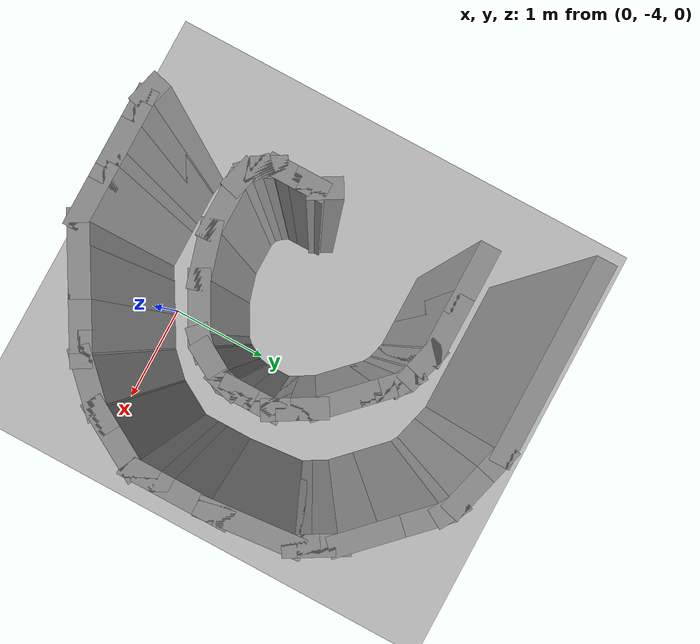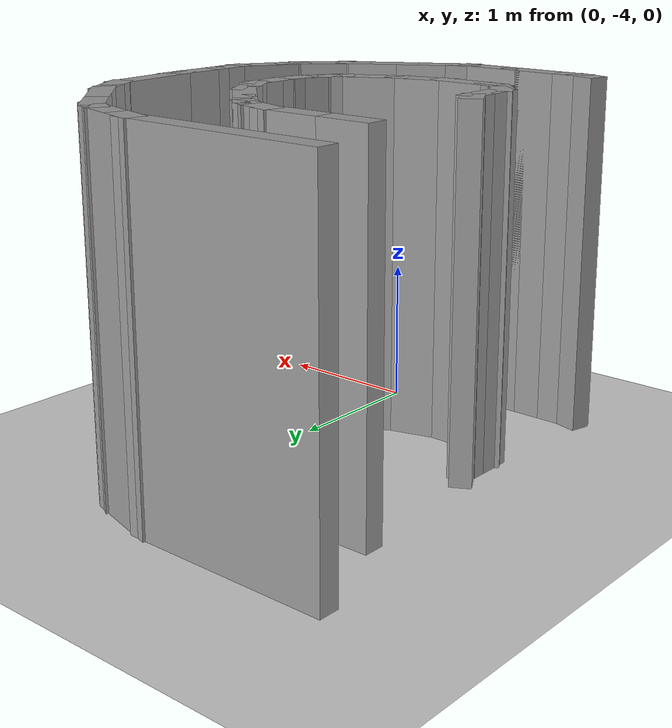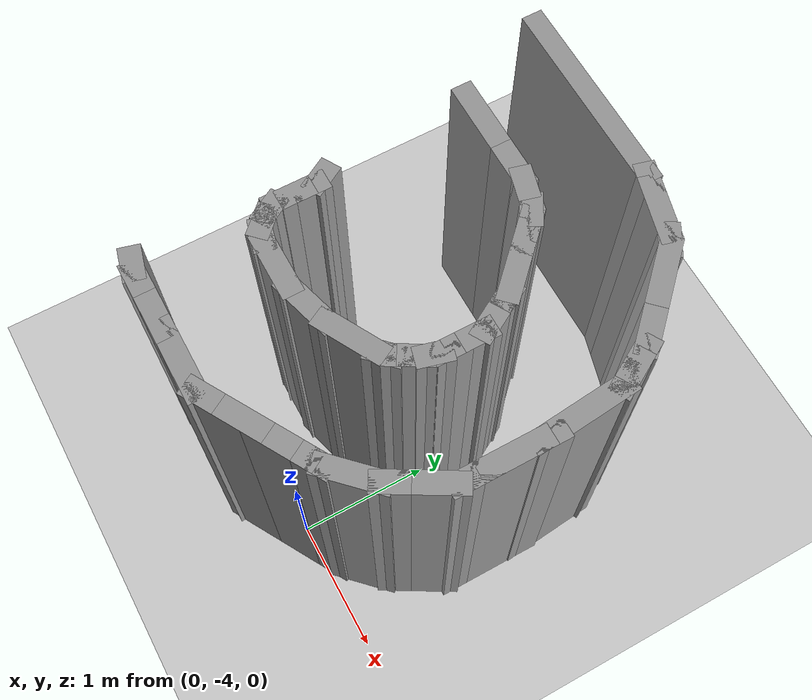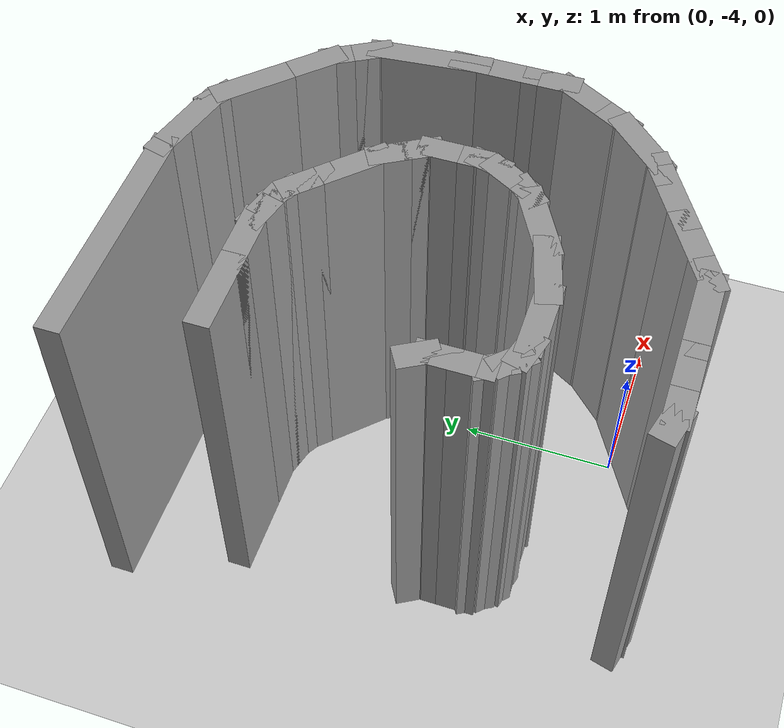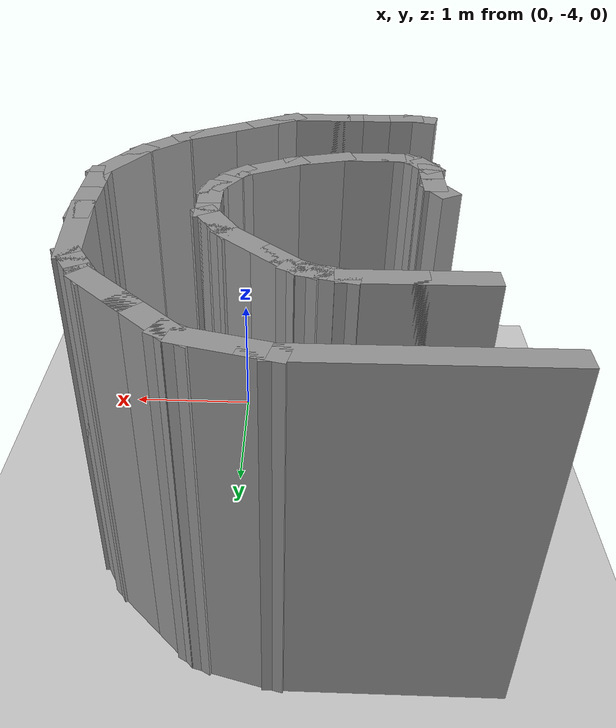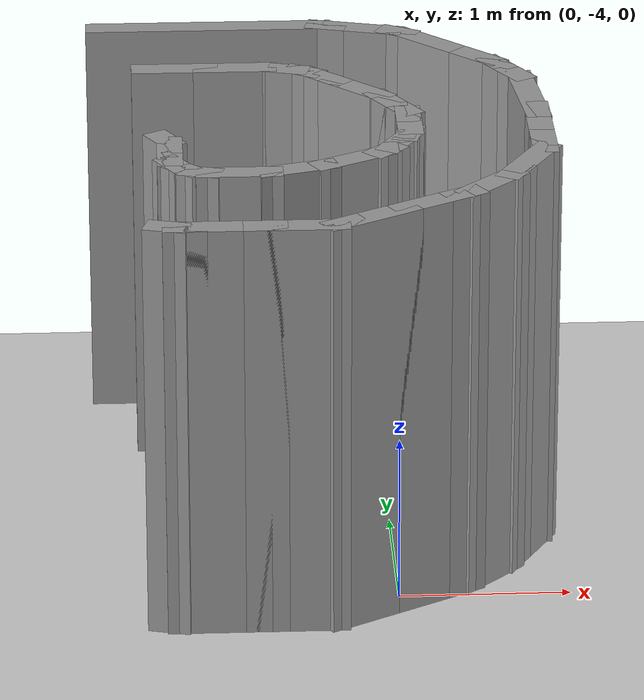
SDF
<sdf version="1.7">
 <world name="train_world">
  <include><uri>model://sun</uri></include>
  <include><uri>model://ground_plane</uri></include>
  <model name="test1">
   <pose>-1.53943 -2.21966 0 0 -0 0</pose>
   <link name="Wall_101">
    <collision name="Wall_101_Collision">
     <geometry><box><size>0.25 0.15 2.5</size></box></geometry>
     <pose>0 0 1.25 0 -0 0</pose>
    </collision>
    <visual name="Wall_101_Visual">
     <pose>0 0 1.25 0 -0 0</pose>
     <geometry><box><size>0.25 0.15 2.5</size></box></geometry>
     <material>
      <script><uri>file://media/materials/scripts/gazebo.material</uri><name>Gazebo/Grey</name></script>
      <ambient>1 1 1 1</ambient>
     </material>
     <meta><layer>0</layer></meta>
    </visual>
    <pose>0.217297 -2.10427 0 0 -0 -0.261799</pose>
   </link>
   <link name="Wall_102">
    <collision name="Wall_102_Collision">
     <geometry><box><size>0.25 0.15 2.5</size></box></geometry>
     <pose>0 0 1.25 0 -0 0</pose>
    </collision>
    <visual name="Wall_102_Visual">
     <pose>0 0 1.25 0 -0 0</pose>
     <geometry><box><size>0.25 0.15 2.5</size></box></geometry>
     <material>
      <script><uri>file://media/materials/scripts/gazebo.material</uri><name>Gazebo/Grey</name></script>
      <ambient>1 1 1 1</ambient>
     </material>
     <meta><layer>0</layer></meta>
    </visual>
    <pose>0.315593 -2.11721 0 0 -0 0</pose>
   </link>
   <link name="Wall_103">
    <collision name="Wall_103_Collision">
     <geometry><box><size>0.5 0.15 2.5</size></box></geometry>
     <pose>0 0 1.25 0 -0 0</pose>
    </collision>
    <visual name="Wall_103_Visual">
     <pose>0 0 1.25 0 -0 0</pose>
     <geometry><box><size>0.5 0.15 2.5</size></box></geometry>
     <material>
      <script><uri>file://media/materials/scripts/gazebo.material</uri><name>Gazebo/Grey</name></script>
      <ambient>1 1 1 1</ambient>
     </material>
     <meta><layer>0</layer></meta>
    </visual>
    <pose>0.540593 -2.11721 0 0 -0 0</pose>
   </link>
   <link name="Wall_104">
    <collision name="Wall_104_Collision">
     <geometry><box><size>0.25 0.15 2.5</size></box></geometry>
     <pose>0 0 1.25 0 -0 0</pose>
    </collision>
    <visual name="Wall_104_Visual">
     <pose>0 0 1.25 0 -0 0</pose>
     <geometry><box><size>0.25 0.15 2.5</size></box></geometry>
     <material>
      <script><uri>file://media/materials/scripts/gazebo.material</uri><name>Gazebo/Grey</name></script>
      <ambient>1 1 1 1</ambient>
     </material>
     <meta><layer>0</layer></meta>
    </visual>
    <pose>0.765593 -2.11721 0 0 -0 0</pose>
   </link>
   <link name="Wall_105">
    <collision name="Wall_105_Collision">
     <geometry><box><size>0.5 0.15 2.5</size></box></geometry>
     <pose>0 0 1.25 0 -0 0</pose>
    </collision>
    <visual name="Wall_105_Visual">
     <pose>0 0 1.25 0 -0 0</pose>
     <geometry><box><size>0.5 0.15 2.5</size></box></geometry>
     <material>
      <script><uri>file://media/materials/scripts/gazebo.material</uri><name>Gazebo/Grey</name></script>
      <ambient>1 1 1 1</ambient>
     </material>
     <meta><layer>0</layer></meta>
    </visual>
    <pose>0.990593 -2.11721 0 0 -0 0</pose>
   </link>
   <link name="Wall_110">
    <collision name="Wall_110_Collision">
     <geometry><box><size>0.25 0.15 2.5</size></box></geometry>
     <pose>0 0 1.25 0 -0 0</pose>
    </collision>
    <visual name="Wall_110_Visual">
     <pose>0 0 1.25 0 -0 0</pose>
     <geometry><box><size>0.25 0.15 2.5</size></box></geometry>
     <material>
      <script><uri>file://media/materials/scripts/gazebo.material</uri><name>Gazebo/Grey</name></script>
      <ambient>1 1 1 1</ambient>
     </material>
     <meta><layer>0</layer></meta>
    </visual>
    <pose>1.20889 -2.09221 0 0 -0 0.523599</pose>
   </link>
   <link name="Wall_111">
    <collision name="Wall_111_Collision">
     <geometry><box><size>0.5 0.15 2.5</size></box></geometry>
     <pose>0 0 1.25 0 -0 0</pose>
    </collision>
    <visual name="Wall_111_Visual">
     <pose>0 0 1.25 0 -0 0</pose>
     <geometry><box><size>0.5 0.15 2.5</size></box></geometry>
     <material>
      <script><uri>file://media/materials/scripts/gazebo.material</uri><name>Gazebo/Grey</name></script>
      <ambient>1 1 1 1</ambient>
     </material>
     <meta><layer>0</layer></meta>
    </visual>
    <pose>1.40375 -1.97971 0 0 -0 0.523599</pose>
   </link>
   <link name="Wall_112">
    <collision name="Wall_112_Collision">
     <geometry><box><size>0.5 0.15 2.5</size></box></geometry>
     <pose>0 0 1.25 0 -0 0</pose>
    </collision>
    <visual name="Wall_112_Visual">
     <pose>0 0 1.25 0 -0 0</pose>
     <geometry><box><size>0.5 0.15 2.5</size></box></geometry>
     <material>
      <script><uri>file://media/materials/scripts/gazebo.material</uri><name>Gazebo/Grey</name></script>
      <ambient>1 1 1 1</ambient>
     </material>
     <meta><layer>0</layer></meta>
    </visual>
    <pose>1.70686 -1.80471 0 0 -0 0.523599</pose>
   </link>
   <link name="Wall_113">
    <collision name="Wall_113_Collision">
     <geometry><box><size>0.25 0.15 2.5</size></box></geometry>
     <pose>0 0 1.25 0 -0 0</pose>
    </collision>
    <visual name="Wall_113_Visual">
     <pose>0 0 1.25 0 -0 0</pose>
     <geometry><box><size>0.25 0.15 2.5</size></box></geometry>
     <material>
      <script><uri>file://media/materials/scripts/gazebo.material</uri><name>Gazebo/Grey</name></script>
      <ambient>1 1 1 1</ambient>
     </material>
     <meta><layer>0</layer></meta>
    </visual>
    <pose>1.90172 -1.69221 0 0 -0 0.523599</pose>
   </link>
   <link name="Wall_114">
    <collision name="Wall_114_Collision">
     <geometry><box><size>0.5 0.15 2.5</size></box></geometry>
     <pose>0 0 1.25 0 -0 0</pose>
    </collision>
    <visual name="Wall_114_Visual">
     <pose>0 0 1.25 0 -0 0</pose>
     <geometry><box><size>0.5 0.15 2.5</size></box></geometry>
     <material>
      <script><uri>file://media/materials/scripts/gazebo.material</uri><name>Gazebo/Grey</name></script>
      <ambient>1 1 1 1</ambient>
     </material>
     <meta><layer>0</layer></meta>
    </visual>
    <pose>2.06876 -1.54347 0 0 -0 0.785398</pose>
   </link>
   <link name="Wall_115">
    <collision name="Wall_115_Collision">
     <geometry><box><size>0.25 0.15 2.5</size></box></geometry>
     <pose>0 0 1.25 0 -0 0</pose>
    </collision>
    <visual name="Wall_115_Visual">
     <pose>0 0 1.25 0 -0 0</pose>
     <geometry><box><size>0.25 0.15 2.5</size></box></geometry>
     <material>
      <script><uri>file://media/materials/scripts/gazebo.material</uri><name>Gazebo/Grey</name></script>
      <ambient>1 1 1 1</ambient>
     </material>
     <meta><layer>0</layer></meta>
    </visual>
    <pose>2.2175 -1.37643 0 0 -0 1.0472</pose>
   </link>
   <link name="Wall_116">
    <collision name="Wall_116_Collision">
     <geometry><box><size>0.5 0.15 2.5</size></box></geometry>
     <pose>0 0 1.25 0 -0 0</pose>
    </collision>
    <visual name="Wall_116_Visual">
     <pose>0 0 1.25 0 -0 0</pose>
     <geometry><box><size>0.5 0.15 2.5</size></box></geometry>
     <material>
      <script><uri>file://media/materials/scripts/gazebo.material</uri><name>Gazebo/Grey</name></script>
      <ambient>1 1 1 1</ambient>
     </material>
     <meta><layer>0</layer></meta>
    </visual>
    <pose>2.33 -1.18157 0 0 -0 1.0472</pose>
   </link>
   <link name="Wall_117">
    <collision name="Wall_117_Collision">
     <geometry><box><size>0.25 0.15 2.5</size></box></geometry>
     <pose>0 0 1.25 0 -0 0</pose>
    </collision>
    <visual name="Wall_117_Visual">
     <pose>0 0 1.25 0 -0 0</pose>
     <geometry><box><size>0.25 0.15 2.5</size></box></geometry>
     <material>
      <script><uri>file://media/materials/scripts/gazebo.material</uri><name>Gazebo/Grey</name></script>
      <ambient>1 1 1 1</ambient>
     </material>
     <meta><layer>0</layer></meta>
    </visual>
    <pose>2.4175 -0.980015 0 0 -0 1.5708</pose>
   </link>
   <link name="Wall_118">
    <collision name="Wall_118_Collision">
     <geometry><box><size>0.25 0.15 2.5</size></box></geometry>
     <pose>0 0 1.25 0 -0 0</pose>
    </collision>
    <visual name="Wall_118_Visual">
     <pose>0 0 1.25 0 -0 0</pose>
     <geometry><box><size>0.25 0.15 2.5</size></box></geometry>
     <material>
      <script><uri>file://media/materials/scripts/gazebo.material</uri><name>Gazebo/Grey</name></script>
      <ambient>1 1 1 1</ambient>
     </material>
     <meta><layer>0</layer></meta>
    </visual>
    <pose>2.4175 -0.880015 0 0 -0 1.5708</pose>
   </link>
   <link name="Wall_119">
    <collision name="Wall_119_Collision">
     <geometry><box><size>0.5 0.15 2.5</size></box></geometry>
     <pose>0 0 1.25 0 -0 0</pose>
    </collision>
    <visual name="Wall_119_Visual">
     <pose>0 0 1.25 0 -0 0</pose>
     <geometry><box><size>0.5 0.15 2.5</size></box></geometry>
     <material>
      <script><uri>file://media/materials/scripts/gazebo.material</uri><name>Gazebo/Grey</name></script>
      <ambient>1 1 1 1</ambient>
     </material>
     <meta><layer>0</layer></meta>
    </visual>
    <pose>2.4175 -0.655015 0 0 -0 1.5708</pose>
   </link>
   <link name="Wall_120">
    <collision name="Wall_120_Collision">
     <geometry><box><size>0.25 0.15 2.5</size></box></geometry>
     <pose>0 0 1.25 0 -0 0</pose>
    </collision>
    <visual name="Wall_120_Visual">
     <pose>0 0 1.25 0 -0 0</pose>
     <geometry><box><size>0.25 0.15 2.5</size></box></geometry>
     <material>
      <script><uri>file://media/materials/scripts/gazebo.material</uri><name>Gazebo/Grey</name></script>
      <ambient>1 1 1 1</ambient>
     </material>
     <meta><layer>0</layer></meta>
    </visual>
    <pose>2.4175 -0.430015 0 0 -0 1.5708</pose>
   </link>
   <link name="Wall_134">
    <collision name="Wall_134_Collision">
     <geometry><box><size>1.5 0.15 2.5</size></box></geometry>
     <pose>0 0 1.25 0 -0 0</pose>
    </collision>
    <visual name="Wall_134_Visual">
     <pose>0 0 1.25 0 -0 0</pose>
     <geometry><box><size>1.5 0.15 2.5</size></box></geometry>
     <material>
      <script><uri>file://media/materials/scripts/gazebo.material</uri><name>Gazebo/Grey</name></script>
      <ambient>1 1 1 1</ambient>
     </material>
     <meta><layer>0</layer></meta>
    </visual>
    <pose>0.521167 1.04174 0 0 -0 0</pose>
   </link>
   <link name="Wall_135">
    <collision name="Wall_135_Collision">
     <geometry><box><size>0.25 0.15 2.5</size></box></geometry>
     <pose>0 0 1.25 0 -0 0</pose>
    </collision>
    <visual name="Wall_135_Visual">
     <pose>0 0 1.25 0 -0 0</pose>
     <geometry><box><size>0.25 0.15 2.5</size></box></geometry>
     <material>
      <script><uri>file://media/materials/scripts/gazebo.material</uri><name>Gazebo/Grey</name></script>
      <ambient>1 1 1 1</ambient>
     </material>
     <meta><layer>0</layer></meta>
    </visual>
    <pose>1.24446 1.0288 0 0 -0 -0.261799</pose>
   </link>
   <link name="Wall_136">
    <collision name="Wall_136_Collision">
     <geometry><box><size>0.5 0.15 2.5</size></box></geometry>
     <pose>0 0 1.25 0 -0 0</pose>
    </collision>
    <visual name="Wall_136_Visual">
     <pose>0 0 1.25 0 -0 0</pose>
     <geometry><box><size>0.5 0.15 2.5</size></box></geometry>
     <material>
      <script><uri>file://media/materials/scripts/gazebo.material</uri><name>Gazebo/Grey</name></script>
      <ambient>1 1 1 1</ambient>
     </material>
     <meta><layer>0</layer></meta>
    </visual>
    <pose>1.4618 0.970565 0 0 -0 -0.261799</pose>
   </link>
   <link name="Wall_137">
    <collision name="Wall_137_Collision">
     <geometry><box><size>0.25 0.15 2.5</size></box></geometry>
     <pose>0 0 1.25 0 -0 0</pose>
    </collision>
    <visual name="Wall_137_Visual">
     <pose>0 0 1.25 0 -0 0</pose>
     <geometry><box><size>0.25 0.15 2.5</size></box></geometry>
     <material>
      <script><uri>file://media/materials/scripts/gazebo.material</uri><name>Gazebo/Grey</name></script>
      <ambient>1 1 1 1</ambient>
     </material>
     <meta><layer>0</layer></meta>
    </visual>
    <pose>1.67413 0.900272 0 0 -0 -0.523599</pose>
   </link>
   <link name="Wall_138">
    <collision name="Wall_138_Collision">
     <geometry><box><size>0.5 0.15 2.5</size></box></geometry>
     <pose>0 0 1.25 0 -0 0</pose>
    </collision>
    <visual name="Wall_138_Visual">
     <pose>0 0 1.25 0 -0 0</pose>
     <geometry><box><size>0.5 0.15 2.5</size></box></geometry>
     <material>
      <script><uri>file://media/materials/scripts/gazebo.material</uri><name>Gazebo/Grey</name></script>
      <ambient>1 1 1 1</ambient>
     </material>
     <meta><layer>0</layer></meta>
    </visual>
    <pose>1.84118 0.751528 0 0 -0 -0.785398</pose>
   </link>
   <link name="Wall_139">
    <collision name="Wall_139_Collision">
     <geometry><box><size>0.5 0.15 2.5</size></box></geometry>
     <pose>0 0 1.25 0 -0 0</pose>
    </collision>
    <visual name="Wall_139_Visual">
     <pose>0 0 1.25 0 -0 0</pose>
     <geometry><box><size>0.5 0.15 2.5</size></box></geometry>
     <material>
      <script><uri>file://media/materials/scripts/gazebo.material</uri><name>Gazebo/Grey</name></script>
      <ambient>1 1 1 1</ambient>
     </material>
     <meta><layer>0</layer></meta>
    </visual>
    <pose>2.08867 0.50404 0 0 -0 -0.785398</pose>
   </link>
   <link name="Wall_140">
    <collision name="Wall_140_Collision">
     <geometry><box><size>0.25 0.15 2.5</size></box></geometry>
     <pose>0 0 1.25 0 -0 0</pose>
    </collision>
    <visual name="Wall_140_Visual">
     <pose>0 0 1.25 0 -0 0</pose>
     <geometry><box><size>0.25 0.15 2.5</size></box></geometry>
     <material>
      <script><uri>file://media/materials/scripts/gazebo.material</uri><name>Gazebo/Grey</name></script>
      <ambient>1 1 1 1</ambient>
     </material>
     <meta><layer>0</layer></meta>
    </visual>
    <pose>2.23741 0.336995 0 0 -0 -1.0472</pose>
   </link>
   <link name="Wall_141">
    <collision name="Wall_141_Collision">
     <geometry><box><size>0.25 0.15 2.5</size></box></geometry>
     <pose>0 0 1.25 0 -0 0</pose>
    </collision>
    <visual name="Wall_141_Visual">
     <pose>0 0 1.25 0 -0 0</pose>
     <geometry><box><size>0.25 0.15 2.5</size></box></geometry>
     <material>
      <script><uri>file://media/materials/scripts/gazebo.material</uri><name>Gazebo/Grey</name></script>
      <ambient>1 1 1 1</ambient>
     </material>
     <meta><layer>0</layer></meta>
    </visual>
    <pose>2.28741 0.250393 0 0 -0 -1.0472</pose>
   </link>
   <link name="Wall_142">
    <collision name="Wall_142_Collision">
     <geometry><box><size>0.25 0.15 2.5</size></box></geometry>
     <pose>0 0 1.25 0 -0 0</pose>
    </collision>
    <visual name="Wall_142_Visual">
     <pose>0 0 1.25 0 -0 0</pose>
     <geometry><box><size>0.25 0.15 2.5</size></box></geometry>
     <material>
      <script><uri>file://media/materials/scripts/gazebo.material</uri><name>Gazebo/Grey</name></script>
      <ambient>1 1 1 1</ambient>
     </material>
     <meta><layer>0</layer></meta>
    </visual>
    <pose>2.33741 0.16379 0 0 -0 -1.0472</pose>
   </link>
   <link name="Wall_143">
    <collision name="Wall_143_Collision">
     <geometry><box><size>0.753026 0.15 2.5</size></box></geometry>
     <pose>0 0 1.25 0 -0 0</pose>
    </collision>
    <visual name="Wall_143_Visual">
     <pose>0 0 1.25 0 -0 0</pose>
     <geometry><box><size>0.753026 0.15 2.5</size></box></geometry>
     <material>
      <script><uri>file://media/materials/scripts/gazebo.material</uri><name>Gazebo/Grey</name></script>
      <ambient>1 1 1 1</ambient>
     </material>
     <meta><layer>0</layer></meta>
    </visual>
    <pose>2.38996 -0.179763 0 0 -0 -1.47931</pose>
   </link>
   <link name="Wall_17">
    <collision name="Wall_17_Collision">
     <geometry><box><size>0.52 0.15 2.5</size></box></geometry>
     <pose>0 0 1.25 0 -0 0</pose>
    </collision>
    <visual name="Wall_17_Visual">
     <pose>0 0 1.25 0 -0 0</pose>
     <geometry><box><size>0.52 0.15 2.5</size></box></geometry>
     <material>
      <script><uri>file://media/materials/scripts/gazebo.material</uri><name>Gazebo/Grey</name></script>
      <ambient>1 1 1 1</ambient>
     </material>
     <meta><layer>0</layer></meta>
    </visual>
    <pose>0.303331 0.332572 0 0 -0 0</pose>
   </link>
   <link name="Wall_18">
    <collision name="Wall_18_Collision">
     <geometry><box><size>0.5 0.15 2.5</size></box></geometry>
     <pose>0 0 1.25 0 -0 0</pose>
    </collision>
    <visual name="Wall_18_Visual">
     <pose>0 0 1.25 0 -0 0</pose>
     <geometry><box><size>0.5 0.15 2.5</size></box></geometry>
     <material>
      <script><uri>file://media/materials/scripts/gazebo.material</uri><name>Gazebo/Grey</name></script>
      <ambient>1 1 1 1</ambient>
     </material>
     <meta><layer>0</layer></meta>
    </visual>
    <pose>0.663331 0.332572 0 0 -0 0</pose>
   </link>
   <link name="Wall_19">
    <collision name="Wall_19_Collision">
     <geometry><box><size>0.25 0.15 2.5</size></box></geometry>
     <pose>0 0 1.25 0 -0 0</pose>
    </collision>
    <visual name="Wall_19_Visual">
     <pose>0 0 1.25 0 -0 0</pose>
     <geometry><box><size>0.25 0.15 2.5</size></box></geometry>
     <material>
      <script><uri>file://media/materials/scripts/gazebo.material</uri><name>Gazebo/Grey</name></script>
      <ambient>1 1 1 1</ambient>
     </material>
     <meta><layer>0</layer></meta>
    </visual>
    <pose>0.886627 0.319631 0 0 -0 -0.261799</pose>
   </link>
   <link name="Wall_20">
    <collision name="Wall_20_Collision">
     <geometry><box><size>0.25 0.15 2.5</size></box></geometry>
     <pose>0 0 1.25 0 -0 0</pose>
    </collision>
    <visual name="Wall_20_Visual">
     <pose>0 0 1.25 0 -0 0</pose>
     <geometry><box><size>0.25 0.15 2.5</size></box></geometry>
     <material>
      <script><uri>file://media/materials/scripts/gazebo.material</uri><name>Gazebo/Grey</name></script>
      <ambient>1 1 1 1</ambient>
     </material>
     <meta><layer>0</layer></meta>
    </visual>
    <pose>0.98322 0.293749 0 0 -0 -0.261799</pose>
   </link>
   <link name="Wall_21">
    <collision name="Wall_21_Collision">
     <geometry><box><size>0.25 0.15 2.5</size></box></geometry>
     <pose>0 0 1.25 0 -0 0</pose>
    </collision>
    <visual name="Wall_21_Visual">
     <pose>0 0 1.25 0 -0 0</pose>
     <geometry><box><size>0.25 0.15 2.5</size></box></geometry>
     <material>
      <script><uri>file://media/materials/scripts/gazebo.material</uri><name>Gazebo/Grey</name></script>
      <ambient>1 1 1 1</ambient>
     </material>
     <meta><layer>0</layer></meta>
    </visual>
    <pose>1.07482 0.255808 0 0 -0 -0.523599</pose>
   </link>
   <link name="Wall_22">
    <collision name="Wall_22_Collision">
     <geometry><box><size>0.25 0.15 2.5</size></box></geometry>
     <pose>0 0 1.25 0 -0 0</pose>
    </collision>
    <visual name="Wall_22_Visual">
     <pose>0 0 1.25 0 -0 0</pose>
     <geometry><box><size>0.25 0.15 2.5</size></box></geometry>
     <material>
      <script><uri>file://media/materials/scripts/gazebo.material</uri><name>Gazebo/Grey</name></script>
      <ambient>1 1 1 1</ambient>
     </material>
     <meta><layer>0</layer></meta>
    </visual>
    <pose>1.15347 0.195453 0 0 -0 -0.785398</pose>
   </link>
   <link name="Wall_23">
    <collision name="Wall_23_Collision">
     <geometry><box><size>0.25 0.15 2.5</size></box></geometry>
     <pose>0 0 1.25 0 -0 0</pose>
    </collision>
    <visual name="Wall_23_Visual">
     <pose>0 0 1.25 0 -0 0</pose>
     <geometry><box><size>0.25 0.15 2.5</size></box></geometry>
     <material>
      <script><uri>file://media/materials/scripts/gazebo.material</uri><name>Gazebo/Grey</name></script>
      <ambient>1 1 1 1</ambient>
     </material>
     <meta><layer>0</layer></meta>
    </visual>
    <pose>1.22419 0.124742 0 0 -0 -0.785398</pose>
   </link>
   <link name="Wall_24">
    <collision name="Wall_24_Collision">
     <geometry><box><size>0.5 0.15 2.5</size></box></geometry>
     <pose>0 0 1.25 0 -0 0</pose>
    </collision>
    <visual name="Wall_24_Visual">
     <pose>0 0 1.25 0 -0 0</pose>
     <geometry><box><size>0.5 0.15 2.5</size></box></geometry>
     <material>
      <script><uri>file://media/materials/scripts/gazebo.material</uri><name>Gazebo/Grey</name></script>
      <ambient>1 1 1 1</ambient>
     </material>
     <meta><layer>0</layer></meta>
    </visual>
    <pose>1.38328 -0.034357 0 0 -0 -0.785398</pose>
   </link>
   <link name="Wall_25">
    <collision name="Wall_25_Collision">
     <geometry><box><size>0.25 0.15 2.5</size></box></geometry>
     <pose>0 0 1.25 0 -0 0</pose>
    </collision>
    <visual name="Wall_25_Visual">
     <pose>0 0 1.25 0 -0 0</pose>
     <geometry><box><size>0.25 0.15 2.5</size></box></geometry>
     <material>
      <script><uri>file://media/materials/scripts/gazebo.material</uri><name>Gazebo/Grey</name></script>
      <ambient>1 1 1 1</ambient>
     </material>
     <meta><layer>0</layer></meta>
    </visual>
    <pose>1.53203 -0.201402 0 0 -0 -1.0472</pose>
   </link>
   <link name="Wall_26">
    <collision name="Wall_26_Collision">
     <geometry><box><size>0.25 0.15 2.5</size></box></geometry>
     <pose>0 0 1.25 0 -0 0</pose>
    </collision>
    <visual name="Wall_26_Visual">
     <pose>0 0 1.25 0 -0 0</pose>
     <geometry><box><size>0.25 0.15 2.5</size></box></geometry>
     <material>
      <script><uri>file://media/materials/scripts/gazebo.material</uri><name>Gazebo/Grey</name></script>
      <ambient>1 1 1 1</ambient>
     </material>
     <meta><layer>0</layer></meta>
    </visual>
    <pose>1.58203 -0.288004 0 0 -0 -1.0472</pose>
   </link>
   <link name="Wall_27">
    <collision name="Wall_27_Collision">
     <geometry><box><size>0.25 0.15 2.5</size></box></geometry>
     <pose>0 0 1.25 0 -0 0</pose>
    </collision>
    <visual name="Wall_27_Visual">
     <pose>0 0 1.25 0 -0 0</pose>
     <geometry><box><size>0.25 0.15 2.5</size></box></geometry>
     <material>
      <script><uri>file://media/materials/scripts/gazebo.material</uri><name>Gazebo/Grey</name></script>
      <ambient>1 1 1 1</ambient>
     </material>
     <meta><layer>0</layer></meta>
    </visual>
    <pose>1.63203 -0.374607 0 0 -0 -1.0472</pose>
   </link>
   <link name="Wall_28">
    <collision name="Wall_28_Collision">
     <geometry><box><size>0.25 0.15 2.5</size></box></geometry>
     <pose>0 0 1.25 0 -0 0</pose>
    </collision>
    <visual name="Wall_28_Visual">
     <pose>0 0 1.25 0 -0 0</pose>
     <geometry><box><size>0.25 0.15 2.5</size></box></geometry>
     <material>
      <script><uri>file://media/materials/scripts/gazebo.material</uri><name>Gazebo/Grey</name></script>
      <ambient>1 1 1 1</ambient>
     </material>
     <meta><layer>0</layer></meta>
    </visual>
    <pose>1.65703 -0.467908 0 0 -0 -1.5708</pose>
   </link>
   <link name="Wall_29">
    <collision name="Wall_29_Collision">
     <geometry><box><size>0.25 0.15 2.5</size></box></geometry>
     <pose>0 0 1.25 0 -0 0</pose>
    </collision>
    <visual name="Wall_29_Visual">
     <pose>0 0 1.25 0 -0 0</pose>
     <geometry><box><size>0.25 0.15 2.5</size></box></geometry>
     <material>
      <script><uri>file://media/materials/scripts/gazebo.material</uri><name>Gazebo/Grey</name></script>
      <ambient>1 1 1 1</ambient>
     </material>
     <meta><layer>0</layer></meta>
    </visual>
    <pose>1.65703 -0.567908 0 0 -0 -1.5708</pose>
   </link>
   <link name="Wall_30">
    <collision name="Wall_30_Collision">
     <geometry><box><size>0.25 0.15 2.5</size></box></geometry>
     <pose>0 0 1.25 0 -0 0</pose>
    </collision>
    <visual name="Wall_30_Visual">
     <pose>0 0 1.25 0 -0 0</pose>
     <geometry><box><size>0.25 0.15 2.5</size></box></geometry>
     <material>
      <script><uri>file://media/materials/scripts/gazebo.material</uri><name>Gazebo/Grey</name></script>
      <ambient>1 1 1 1</ambient>
     </material>
     <meta><layer>0</layer></meta>
    </visual>
    <pose>1.65703 -0.667908 0 0 -0 -1.5708</pose>
   </link>
   <link name="Wall_31">
    <collision name="Wall_31_Collision">
     <geometry><box><size>0.25 0.15 2.5</size></box></geometry>
     <pose>0 0 1.25 0 -0 0</pose>
    </collision>
    <visual name="Wall_31_Visual">
     <pose>0 0 1.25 0 -0 0</pose>
     <geometry><box><size>0.25 0.15 2.5</size></box></geometry>
     <material>
      <script><uri>file://media/materials/scripts/gazebo.material</uri><name>Gazebo/Grey</name></script>
      <ambient>1 1 1 1</ambient>
     </material>
     <meta><layer>0</layer></meta>
    </visual>
    <pose>1.64409 -0.766205 0 0 -0 -1.8326</pose>
   </link>
   <link name="Wall_32">
    <collision name="Wall_32_Collision">
     <geometry><box><size>0.25 0.15 2.5</size></box></geometry>
     <pose>0 0 1.25 0 -0 0</pose>
    </collision>
    <visual name="Wall_32_Visual">
     <pose>0 0 1.25 0 -0 0</pose>
     <geometry><box><size>0.25 0.15 2.5</size></box></geometry>
     <material>
      <script><uri>file://media/materials/scripts/gazebo.material</uri><name>Gazebo/Grey</name></script>
      <ambient>1 1 1 1</ambient>
     </material>
     <meta><layer>0</layer></meta>
    </visual>
    <pose>1.60615 -0.857802 0 0 -0 -2.0944</pose>
   </link>
   <link name="Wall_33">
    <collision name="Wall_33_Collision">
     <geometry><box><size>0.25 0.15 2.5</size></box></geometry>
     <pose>0 0 1.25 0 -0 0</pose>
    </collision>
    <visual name="Wall_33_Visual">
     <pose>0 0 1.25 0 -0 0</pose>
     <geometry><box><size>0.25 0.15 2.5</size></box></geometry>
     <material>
      <script><uri>file://media/materials/scripts/gazebo.material</uri><name>Gazebo/Grey</name></script>
      <ambient>1 1 1 1</ambient>
     </material>
     <meta><layer>0</layer></meta>
    </visual>
    <pose>1.55615 -0.944405 0 0 -0 -2.0944</pose>
   </link>
   <link name="Wall_34">
    <collision name="Wall_34_Collision">
     <geometry><box><size>0.25 0.15 2.5</size></box></geometry>
     <pose>0 0 1.25 0 -0 0</pose>
    </collision>
    <visual name="Wall_34_Visual">
     <pose>0 0 1.25 0 -0 0</pose>
     <geometry><box><size>0.25 0.15 2.5</size></box></geometry>
     <material>
      <script><uri>file://media/materials/scripts/gazebo.material</uri><name>Gazebo/Grey</name></script>
      <ambient>1 1 1 1</ambient>
     </material>
     <meta><layer>0</layer></meta>
    </visual>
    <pose>1.49579 -1.02306 0 0 -0 -2.35619</pose>
   </link>
   <link name="Wall_35">
    <collision name="Wall_35_Collision">
     <geometry><box><size>0.517457 0.15 2.5</size></box></geometry>
     <pose>0 0 1.25 0 -0 0</pose>
    </collision>
    <visual name="Wall_35_Visual">
     <pose>0 0 1.25 0 -0 0</pose>
     <geometry><box><size>0.517457 0.15 2.5</size></box></geometry>
     <material>
      <script><uri>file://media/materials/scripts/gazebo.material</uri><name>Gazebo/Grey</name></script>
      <ambient>1 1 1 1</ambient>
     </material>
     <meta><layer>0</layer></meta>
    </visual>
    <pose>1.29888 -1.14592 0 0 -0 -2.64521</pose>
   </link>
   <link name="Wall_36">
    <collision name="Wall_36_Collision">
     <geometry><box><size>0.480722 0.15 2.5</size></box></geometry>
     <pose>0 0 1.25 0 -0 0</pose>
    </collision>
    <visual name="Wall_36_Visual">
     <pose>0 0 1.25 0 -0 0</pose>
     <geometry><box><size>0.480722 0.15 2.5</size></box></geometry>
     <material>
      <script><uri>file://media/materials/scripts/gazebo.material</uri><name>Gazebo/Grey</name></script>
      <ambient>1 1 1 1</ambient>
     </material>
     <meta><layer>0</layer></meta>
    </visual>
    <pose>0.978289 -1.27871 0 0 -0 -2.86414</pose>
   </link>
   <link name="Wall_37">
    <collision name="Wall_37_Collision">
     <geometry><box><size>0.5 0.15 2.5</size></box></geometry>
     <pose>0 0 1.25 0 -0 0</pose>
    </collision>
    <visual name="Wall_37_Visual">
     <pose>0 0 1.25 0 -0 0</pose>
     <geometry><box><size>0.5 0.15 2.5</size></box></geometry>
     <material>
      <script><uri>file://media/materials/scripts/gazebo.material</uri><name>Gazebo/Grey</name></script>
      <ambient>1 1 1 1</ambient>
     </material>
     <meta><layer>0</layer></meta>
    </visual>
    <pose>0.644252 -1.324 0 0 -0 3.14159</pose>
   </link>
   <link name="Wall_38">
    <collision name="Wall_38_Collision">
     <geometry><box><size>0.25 0.15 2.5</size></box></geometry>
     <pose>0 0 1.25 0 -0 0</pose>
    </collision>
    <visual name="Wall_38_Visual">
     <pose>0 0 1.25 0 -0 0</pose>
     <geometry><box><size>0.25 0.15 2.5</size></box></geometry>
     <material>
      <script><uri>file://media/materials/scripts/gazebo.material</uri><name>Gazebo/Grey</name></script>
      <ambient>1 1 1 1</ambient>
     </material>
     <meta><layer>0</layer></meta>
    </visual>
    <pose>0.420956 -1.31106 0 0 -0 2.87979</pose>
   </link>
   <link name="Wall_39">
    <collision name="Wall_39_Collision">
     <geometry><box><size>0.25 0.15 2.5</size></box></geometry>
     <pose>0 0 1.25 0 -0 0</pose>
    </collision>
    <visual name="Wall_39_Visual">
     <pose>0 0 1.25 0 -0 0</pose>
     <geometry><box><size>0.25 0.15 2.5</size></box></geometry>
     <material>
      <script><uri>file://media/materials/scripts/gazebo.material</uri><name>Gazebo/Grey</name></script>
      <ambient>1 1 1 1</ambient>
     </material>
     <meta><layer>0</layer></meta>
    </visual>
    <pose>0.337304 -1.26277 0 0 -0 2.35619</pose>
   </link>
   <link name="Wall_40">
    <collision name="Wall_40_Collision">
     <geometry><box><size>0.25 0.15 2.5</size></box></geometry>
     <pose>0 0 1.25 0 -0 0</pose>
    </collision>
    <visual name="Wall_40_Visual">
     <pose>0 0 1.25 0 -0 0</pose>
     <geometry><box><size>0.25 0.15 2.5</size></box></geometry>
     <material>
      <script><uri>file://media/materials/scripts/gazebo.material</uri><name>Gazebo/Grey</name></script>
      <ambient>1 1 1 1</ambient>
     </material>
     <meta><layer>0</layer></meta>
    </visual>
    <pose>0.276949 -1.18411 0 0 -0 2.0944</pose>
   </link>
   <link name="Wall_41">
    <collision name="Wall_41_Collision">
     <geometry><box><size>0.25 0.15 2.5</size></box></geometry>
     <pose>0 0 1.25 0 -0 0</pose>
    </collision>
    <visual name="Wall_41_Visual">
     <pose>0 0 1.25 0 -0 0</pose>
     <geometry><box><size>0.25 0.15 2.5</size></box></geometry>
     <material>
      <script><uri>file://media/materials/scripts/gazebo.material</uri><name>Gazebo/Grey</name></script>
      <ambient>1 1 1 1</ambient>
     </material>
     <meta><layer>0</layer></meta>
    </visual>
    <pose>0.251949 -1.09081 0 0 -0 1.5708</pose>
   </link>
   <link name="Wall_42">
    <collision name="Wall_42_Collision">
     <geometry><box><size>0.25 0.15 2.5</size></box></geometry>
     <pose>0 0 1.25 0 -0 0</pose>
    </collision>
    <visual name="Wall_42_Visual">
     <pose>0 0 1.25 0 -0 0</pose>
     <geometry><box><size>0.25 0.15 2.5</size></box></geometry>
     <material>
      <script><uri>file://media/materials/scripts/gazebo.material</uri><name>Gazebo/Grey</name></script>
      <ambient>1 1 1 1</ambient>
     </material>
     <meta><layer>0</layer></meta>
    </visual>
    <pose>0.251949 -0.990808 0 0 -0 1.5708</pose>
   </link>
   <link name="Wall_43">
    <collision name="Wall_43_Collision">
     <geometry><box><size>0.25 0.15 2.5</size></box></geometry>
     <pose>0 0 1.25 0 -0 0</pose>
    </collision>
    <visual name="Wall_43_Visual">
     <pose>0 0 1.25 0 -0 0</pose>
     <geometry><box><size>0.25 0.15 2.5</size></box></geometry>
     <material>
      <script><uri>file://media/materials/scripts/gazebo.material</uri><name>Gazebo/Grey</name></script>
      <ambient>1 1 1 1</ambient>
     </material>
     <meta><layer>0</layer></meta>
    </visual>
    <pose>0.251949 -0.890808 0 0 -0 1.5708</pose>
   </link>
   <link name="Wall_44">
    <collision name="Wall_44_Collision">
     <geometry><box><size>0.25 0.15 2.5</size></box></geometry>
     <pose>0 0 1.25 0 -0 0</pose>
    </collision>
    <visual name="Wall_44_Visual">
     <pose>0 0 1.25 0 -0 0</pose>
     <geometry><box><size>0.25 0.15 2.5</size></box></geometry>
     <material>
      <script><uri>file://media/materials/scripts/gazebo.material</uri><name>Gazebo/Grey</name></script>
      <ambient>1 1 1 1</ambient>
     </material>
     <meta><layer>0</layer></meta>
    </visual>
    <pose>0.226949 -0.797507 0 0 -0 2.0944</pose>
   </link>
   <static>1</static>
  </model>
 </world>
</sdf>
